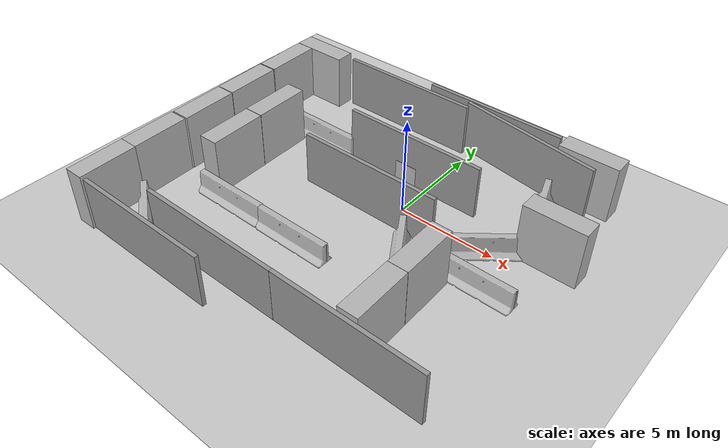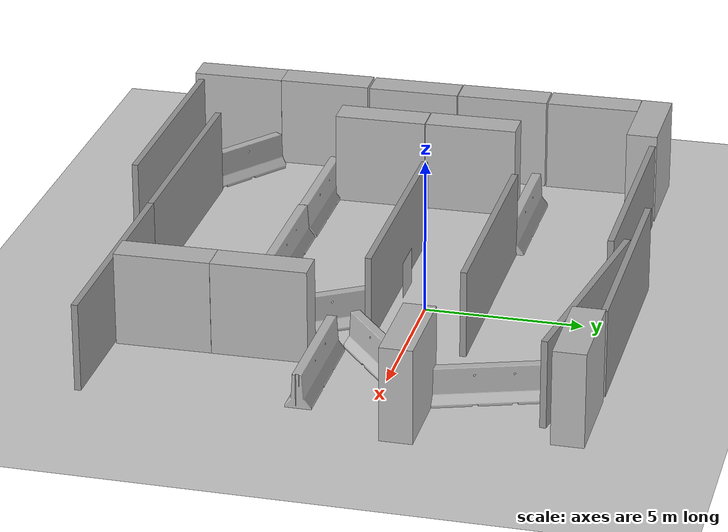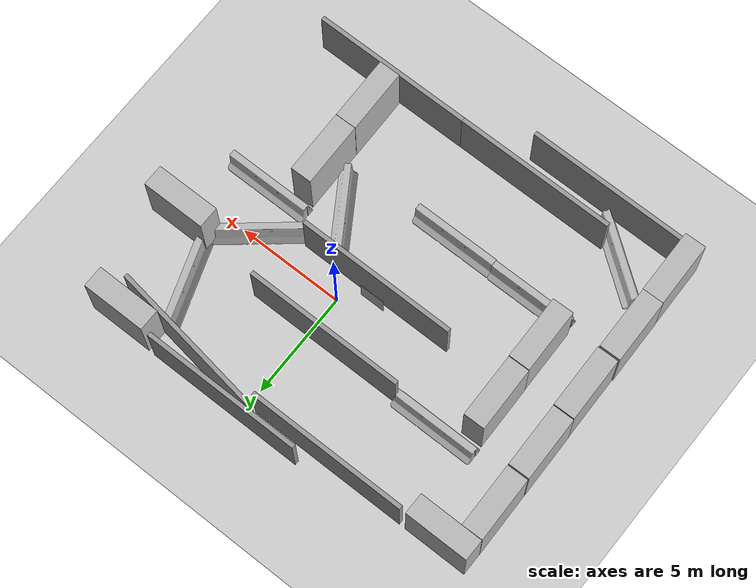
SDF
<sdf version="1.7">
 <world name="default">
  <light name="sun" type="directional">
   <pose>0 0 10 0 -0 0</pose>
   <diffuse>0.8 0.8 0.8 1</diffuse>
   <specular>0.2 0.2 0.2 1</specular>
   <attenuation>
    <range>1000</range>
    <constant>0.9</constant>
    <linear>0.01</linear>
    <quadratic>0.001</quadratic>
   </attenuation>
   <direction>-0.5 0.1 -0.9</direction>
   <spot><inner_angle>0</inner_angle><outer_angle>0</outer_angle><falloff>0</falloff></spot>
  </light>
  <model name="ground_plane">
   <static>1</static>
   <link name="link">
    <collision name="collision">
     <geometry><plane><normal>0 0 1</normal><size>100 100</size></plane></geometry>
     <surface>
      <contact><collide_bitmask>65535</collide_bitmask></contact>
      <friction><ode><mu>100</mu><mu2>50</mu2></ode></friction>
     </surface>
    </collision>
    <visual name="visual">
     <cast_shadows>0</cast_shadows>
     <geometry><plane><normal>0 0 1</normal><size>100 100</size></plane></geometry>
     <material>
      <script><uri>file://media/materials/scripts/gazebo.material</uri><name>Gazebo/Grey</name></script>
     </material>
    </visual>
   </link>
  </model>
  <gravity>0 0 -9.8</gravity>
  <magnetic_field>6e-06 2.3e-05 -4.2e-05</magnetic_field>
  <atmosphere type="adiabatic"/>
  <physics type="ode">
   <max_step_size>0.001</max_step_size>
   <real_time_factor>1</real_time_factor>
   <real_time_update_rate>1000</real_time_update_rate>
  </physics>
  <scene><ambient>0.4 0.4 0.4 1</ambient><background>0.7 0.7 0.7 1</background><shadows>1</shadows></scene>
  <spherical_coordinates>
   <surface_model>EARTH_WGS84</surface_model>
   <latitude_deg>0</latitude_deg>
   <longitude_deg>0</longitude_deg>
   <elevation>0</elevation>
   <heading_deg>0</heading_deg>
  </spherical_coordinates>
  <model name="grey_wall">
   <static>1</static>
   <link name="link">
    <pose>0 0 1.4 0 -0 0</pose>
    <collision name="collision"><geometry><box><size>7.5 0.2 2.8</size></box></geometry></collision>
    <visual name="visual">
     <cast_shadows>0</cast_shadows>
     <geometry><box><size>7.5 0.2 2.8</size></box></geometry>
     <material>
      <script>
       <uri>model://grey_wall/materials/scripts</uri>
       <uri>model://grey_wall/materials/textures</uri>
       <name>vrc/grey_wall</name>
      </script>
     </material>
    </visual>
   </link>
   <pose>-3.5333 -8.75879 0 0 -0 0</pose>
  </model>
  <model name="nist_maze_wall_120">
   <static>1</static>
   <link name="nist_maze_wall_120_link">
    <collision name="collision">
     <geometry>
      <mesh><uri>model://nist_maze_wall_120/meshes/nist_maze_wall_120.dae</uri><scale>1 1 1</scale></mesh>
     </geometry>
    </collision>
    <visual name="visual">
     <geometry>
      <mesh><uri>model://nist_maze_wall_120/meshes/nist_maze_wall_120.dae</uri><scale>1 1 1</scale></mesh>
     </geometry>
    </visual>
   </link>
   <pose>-1.21267 -1.45873 0 0 -0 0</pose>
  </model>
  <model name="brick_box_3x1x3">
   <static>1</static>
   <link name="chassis">
    <pose>0 0 1.5 0 -0 0</pose>
    <collision name="collision"><geometry><box><size>3 1 3</size></box></geometry></collision>
    <visual name="visual">
     <geometry><mesh><uri>model://brick_box_3x1x3/meshes/simple_box.dae</uri><scale>3 1 3</scale></mesh></geometry>
     <material>
      <script>
       <uri>model://brick_box_3x1x3/materials/scripts</uri>
       <uri>model://brick_box_3x1x3/materials/textures</uri>
       <name>BrickBox/Diffuse</name>
      </script>
     </material>
    </visual>
   </link>
   <pose>7.16212 1.16098 0 0 -0 0</pose>
  </model>
  <model name="jersey_barrier">
   <static>1</static>
   <link name="link">
    <visual name="visual">
     <geometry><mesh><uri>model://jersey_barrier/meshes/jersey_barrier.dae</uri></mesh></geometry>
    </visual>
    <collision name="upright">
     <pose>0 0 0.5715 0 -0 0</pose>
     <geometry><box><size>4.06542 0.3063 1.143</size></box></geometry>
    </collision>
    <collision name="base">
     <pose>0 0 0.032258 0 -0 0</pose>
     <geometry><box><size>4.06542 0.8107 0.064516</size></box></geometry>
    </collision>
    <collision name="base2">
     <pose>0 0 0.1 0 -0 0</pose>
     <geometry><box><size>4.06542 0.65 0.1</size></box></geometry>
    </collision>
    <collision name="base3">
     <pose>0 0 0.2 0 -0 0</pose>
     <geometry><box><size>4.06542 0.5 0.1</size></box></geometry>
    </collision>
    <collision name="left-angle">
     <pose>0 -0.224 0.2401 0.9 -0 0</pose>
     <geometry><box><size>4.06542 0.5 0.064516</size></box></geometry>
    </collision>
    <collision name="right-angle">
     <pose>0 0.224 0.2401 -0.9 0 0</pose>
     <geometry><box><size>4.06542 0.5 0.064516</size></box></geometry>
    </collision>
   </link>
   <pose>5.31518 -2.1196 0 0 -0 0</pose>
  </model>
  <model name="grey_wall_clone">
   <static>1</static>
   <link name="link">
    <pose>0 0 1.4 0 -0 0</pose>
    <collision name="collision"><geometry><box><size>7.5 0.2 2.8</size></box></geometry></collision>
    <visual name="visual">
     <cast_shadows>0</cast_shadows>
     <geometry><box><size>7.5 0.2 2.8</size></box></geometry>
     <material>
      <script>
       <uri>model://grey_wall/materials/scripts</uri>
       <uri>model://grey_wall/materials/textures</uri>
       <name>vrc/grey_wall</name>
      </script>
     </material>
    </visual>
   </link>
   <pose>-0.900684 1.84089 0 0 -0 0</pose>
  </model>
  <model name="grey_wall_clone_0">
   <static>1</static>
   <link name="link">
    <pose>0 0 1.4 0 -0 0</pose>
    <collision name="collision"><geometry><box><size>7.5 0.2 2.8</size></box></geometry></collision>
    <visual name="visual">
     <cast_shadows>0</cast_shadows>
     <geometry><box><size>7.5 0.2 2.8</size></box></geometry>
     <material>
      <script>
       <uri>model://grey_wall/materials/scripts</uri>
       <uri>model://grey_wall/materials/textures</uri>
       <name>vrc/grey_wall</name>
      </script>
     </material>
    </visual>
   </link>
   <pose>-6.24437 -10.1356 0 0 -0 0</pose>
  </model>
  <model name="grey_wall_clone_1">
   <static>1</static>
   <link name="link">
    <pose>0 0 1.4 0 -0 0</pose>
    <collision name="collision"><geometry><box><size>7.5 0.2 2.8</size></box></geometry></collision>
    <visual name="visual">
     <cast_shadows>0</cast_shadows>
     <geometry><box><size>7.5 0.2 2.8</size></box></geometry>
     <material>
      <script>
       <uri>model://grey_wall/materials/scripts</uri>
       <uri>model://grey_wall/materials/textures</uri>
       <name>vrc/grey_wall</name>
      </script>
     </material>
    </visual>
   </link>
   <pose>3.95385 -8.7555 0 0 -0 0</pose>
  </model>
  <model name="grey_wall_clone_0_clone_1">
   <static>1</static>
   <link name="link">
    <pose>0 0 1.4 0 -0 0</pose>
    <collision name="collision"><geometry><box><size>7.5 0.2 2.8</size></box></geometry></collision>
    <visual name="visual">
     <cast_shadows>0</cast_shadows>
     <geometry><box><size>7.5 0.2 2.8</size></box></geometry>
     <material>
      <script>
       <uri>model://grey_wall/materials/scripts</uri>
       <uri>model://grey_wall/materials/textures</uri>
       <name>vrc/grey_wall</name>
      </script>
     </material>
    </visual>
   </link>
   <pose>0.672905 6.40226 0 0 -0 0</pose>
  </model>
  <model name="grey_wall_clone_clone">
   <static>1</static>
   <link name="link">
    <pose>0 0 1.4 0 -0 0</pose>
    <collision name="collision"><geometry><box><size>7.5 0.2 2.8</size></box></geometry></collision>
    <visual name="visual">
     <cast_shadows>0</cast_shadows>
     <geometry><box><size>7.5 0.2 2.8</size></box></geometry>
     <material>
      <script>
       <uri>model://grey_wall/materials/scripts</uri>
       <uri>model://grey_wall/materials/textures</uri>
       <name>vrc/grey_wall</name>
      </script>
     </material>
    </visual>
   </link>
   <pose>-1.1998 -1.17835 0 0 -0 0</pose>
  </model>
  <model name="nist_maze_wall_120_clone">
   <static>1</static>
   <link name="nist_maze_wall_120_link">
    <collision name="collision">
     <geometry>
      <mesh><uri>model://nist_maze_wall_120/meshes/nist_maze_wall_120.dae</uri><scale>1 1 1</scale></mesh>
     </geometry>
    </collision>
    <visual name="visual">
     <geometry>
      <mesh><uri>model://nist_maze_wall_120/meshes/nist_maze_wall_120.dae</uri><scale>1 1 1</scale></mesh>
     </geometry>
    </visual>
   </link>
   <pose>-1.11315 1.03044 0 0 -0 0</pose>
  </model>
  <model name="brick_box_3x1x3_clone_clone">
   <static>1</static>
   <link name="chassis">
    <pose>0 0 1.5 0 -0 0</pose>
    <collision name="collision"><geometry><box><size>3 1 3</size></box></geometry></collision>
    <visual name="visual">
     <geometry><mesh><uri>model://brick_box_3x1x3/meshes/simple_box.dae</uri><scale>3 1 3</scale></mesh></geometry>
     <material>
      <script>
       <uri>model://brick_box_3x1x3/materials/scripts</uri>
       <uri>model://brick_box_3x1x3/materials/textures</uri>
       <name>BrickBox/Diffuse</name>
      </script>
     </material>
    </visual>
   </link>
   <pose>6.22244 5.99709 0 0 -0 0</pose>
  </model>
  <model name="grey_wall_clone_0_clone_0_clone">
   <static>1</static>
   <link name="link">
    <pose>0 0 1.4 0 -0 0</pose>
    <collision name="collision"><geometry><box><size>7.5 0.2 2.8</size></box></geometry></collision>
    <visual name="visual">
     <cast_shadows>0</cast_shadows>
     <geometry><box><size>7.5 0.2 2.8</size></box></geometry>
     <material>
      <script>
       <uri>model://grey_wall/materials/scripts</uri>
       <uri>model://grey_wall/materials/textures</uri>
       <name>vrc/grey_wall</name>
      </script>
     </material>
    </visual>
   </link>
   <pose>3.0644 5.63462 0 0 0 -0.145885</pose>
  </model>
  <model name="grey_wall_clone_0_clone_0_clone_0">
   <static>1</static>
   <link name="link">
    <pose>0 0 1.4 0 -0 0</pose>
    <collision name="collision"><geometry><box><size>7.5 0.2 2.8</size></box></geometry></collision>
    <visual name="visual">
     <cast_shadows>0</cast_shadows>
     <geometry><box><size>7.5 0.2 2.8</size></box></geometry>
     <material>
      <script>
       <uri>model://grey_wall/materials/scripts</uri>
       <uri>model://grey_wall/materials/textures</uri>
       <name>vrc/grey_wall</name>
      </script>
     </material>
    </visual>
   </link>
   <pose>-4.1641 5.70704 0 0 -0 0</pose>
  </model>
  <model name="jersey_barrier_clone">
   <static>1</static>
   <link name="link">
    <visual name="visual">
     <geometry><mesh><uri>model://jersey_barrier/meshes/jersey_barrier.dae</uri></mesh></geometry>
    </visual>
    <collision name="upright">
     <pose>0 0 0.5715 0 -0 0</pose>
     <geometry><box><size>4.06542 0.3063 1.143</size></box></geometry>
    </collision>
    <collision name="base">
     <pose>0 0 0.032258 0 -0 0</pose>
     <geometry><box><size>4.06542 0.8107 0.064516</size></box></geometry>
    </collision>
    <collision name="base2">
     <pose>0 0 0.1 0 -0 0</pose>
     <geometry><box><size>4.06542 0.65 0.1</size></box></geometry>
    </collision>
    <collision name="base3">
     <pose>0 0 0.2 0 -0 0</pose>
     <geometry><box><size>4.06542 0.5 0.1</size></box></geometry>
    </collision>
    <collision name="left-angle">
     <pose>0 -0.224 0.2401 0.9 -0 0</pose>
     <geometry><box><size>4.06542 0.5 0.064516</size></box></geometry>
    </collision>
    <collision name="right-angle">
     <pose>0 0.224 0.2401 -0.9 0 0</pose>
     <geometry><box><size>4.06542 0.5 0.064516</size></box></geometry>
    </collision>
   </link>
   <pose>5.34841 3.33148 0 0 -0 1.9011</pose>
  </model>
  <model name="jersey_barrier_clone_clone">
   <static>1</static>
   <link name="link">
    <visual name="visual">
     <geometry><mesh><uri>model://jersey_barrier/meshes/jersey_barrier.dae</uri></mesh></geometry>
    </visual>
    <collision name="upright">
     <pose>0 0 0.5715 0 -0 0</pose>
     <geometry><box><size>4.06542 0.3063 1.143</size></box></geometry>
    </collision>
    <collision name="base">
     <pose>0 0 0.032258 0 -0 0</pose>
     <geometry><box><size>4.06542 0.8107 0.064516</size></box></geometry>
    </collision>
    <collision name="base2">
     <pose>0 0 0.1 0 -0 0</pose>
     <geometry><box><size>4.06542 0.65 0.1</size></box></geometry>
    </collision>
    <collision name="base3">
     <pose>0 0 0.2 0 -0 0</pose>
     <geometry><box><size>4.06542 0.5 0.1</size></box></geometry>
    </collision>
    <collision name="left-angle">
     <pose>0 -0.224 0.2401 0.9 -0 0</pose>
     <geometry><box><size>4.06542 0.5 0.064516</size></box></geometry>
    </collision>
    <collision name="right-angle">
     <pose>0 0.224 0.2401 -0.9 0 0</pose>
     <geometry><box><size>4.06542 0.5 0.064516</size></box></geometry>
    </collision>
   </link>
   <pose>4.37945 -0.242069 0 0 -0 0.685558</pose>
  </model>
  <model name="brick_box_3x1x3_clone_clone_clone">
   <static>1</static>
   <link name="chassis">
    <pose>0 0 1.5 0 -0 0</pose>
    <collision name="collision"><geometry><box><size>3 1 3</size></box></geometry></collision>
    <visual name="visual">
     <geometry><mesh><uri>model://brick_box_3x1x3/meshes/simple_box.dae</uri><scale>3 1 3</scale></mesh></geometry>
     <material>
      <script>
       <uri>model://brick_box_3x1x3/materials/scripts</uri>
       <uri>model://brick_box_3x1x3/materials/textures</uri>
       <name>BrickBox/Diffuse</name>
      </script>
     </material>
    </visual>
   </link>
   <pose>-9.70571 5.30807 0 0 -0 0</pose>
  </model>
  <model name="brick_box_3x1x3_clone_clone_clone_0">
   <static>1</static>
   <link name="chassis">
    <pose>0 0 1.5 0 -0 0</pose>
    <collision name="collision"><geometry><box><size>3 1 3</size></box></geometry></collision>
    <visual name="visual">
     <geometry><mesh><uri>model://brick_box_3x1x3/meshes/simple_box.dae</uri><scale>3 1 3</scale></mesh></geometry>
     <material>
      <script>
       <uri>model://brick_box_3x1x3/materials/scripts</uri>
       <uri>model://brick_box_3x1x3/materials/textures</uri>
       <name>BrickBox/Diffuse</name>
      </script>
     </material>
    </visual>
   </link>
   <pose>-10.6849 3.29996 0 0 0 -1.55503</pose>
  </model>
  <model name="brick_box_3x1x3_clone_clone_clone_0_clone">
   <static>1</static>
   <link name="chassis">
    <pose>0 0 1.5 0 -0 0</pose>
    <collision name="collision"><geometry><box><size>3 1 3</size></box></geometry></collision>
    <visual name="visual">
     <geometry><mesh><uri>model://brick_box_3x1x3/meshes/simple_box.dae</uri><scale>3 1 3</scale></mesh></geometry>
     <material>
      <script>
       <uri>model://brick_box_3x1x3/materials/scripts</uri>
       <uri>model://brick_box_3x1x3/materials/textures</uri>
       <name>BrickBox/Diffuse</name>
      </script>
     </material>
    </visual>
   </link>
   <pose>-10.6399 0.247985 0 0 0 -1.55503</pose>
  </model>
  <model name="jersey_barrier_clone_0">
   <static>1</static>
   <link name="link">
    <visual name="visual">
     <geometry><mesh><uri>model://jersey_barrier/meshes/jersey_barrier.dae</uri></mesh></geometry>
    </visual>
    <collision name="upright">
     <pose>0 0 0.5715 0 -0 0</pose>
     <geometry><box><size>4.06542 0.3063 1.143</size></box></geometry>
    </collision>
    <collision name="base">
     <pose>0 0 0.032258 0 -0 0</pose>
     <geometry><box><size>4.06542 0.8107 0.064516</size></box></geometry>
    </collision>
    <collision name="base2">
     <pose>0 0 0.1 0 -0 0</pose>
     <geometry><box><size>4.06542 0.65 0.1</size></box></geometry>
    </collision>
    <collision name="base3">
     <pose>0 0 0.2 0 -0 0</pose>
     <geometry><box><size>4.06542 0.5 0.1</size></box></geometry>
    </collision>
    <collision name="left-angle">
     <pose>0 -0.224 0.2401 0.9 -0 0</pose>
     <geometry><box><size>4.06542 0.5 0.064516</size></box></geometry>
    </collision>
    <collision name="right-angle">
     <pose>0 0.224 0.2401 -0.9 0 0</pose>
     <geometry><box><size>4.06542 0.5 0.064516</size></box></geometry>
    </collision>
   </link>
   <pose>-6.57936 1.77096 0 0 -0 0</pose>
  </model>
  <model name="brick_box_3x1x3_clone_clone_clone_0_clone_clone">
   <static>1</static>
   <link name="chassis">
    <pose>0 0 1.5 0 -0 0</pose>
    <collision name="collision"><geometry><box><size>3 1 3</size></box></geometry></collision>
    <visual name="visual">
     <geometry><mesh><uri>model://brick_box_3x1x3/meshes/simple_box.dae</uri><scale>3 1 3</scale></mesh></geometry>
     <material>
      <script>
       <uri>model://brick_box_3x1x3/materials/scripts</uri>
       <uri>model://brick_box_3x1x3/materials/textures</uri>
       <name>BrickBox/Diffuse</name>
      </script>
     </material>
    </visual>
   </link>
   <pose>-8.02814 -0.260572 0 0 0 -1.55503</pose>
  </model>
  <model name="brick_box_3x1x3_clone_clone_clone_0_clone_clone_0">
   <static>1</static>
   <link name="chassis">
    <pose>0 0 1.5 0 -0 0</pose>
    <collision name="collision"><geometry><box><size>3 1 3</size></box></geometry></collision>
    <visual name="visual">
     <geometry><mesh><uri>model://brick_box_3x1x3/meshes/simple_box.dae</uri><scale>3 1 3</scale></mesh></geometry>
     <material>
      <script>
       <uri>model://brick_box_3x1x3/materials/scripts</uri>
       <uri>model://brick_box_3x1x3/materials/textures</uri>
       <name>BrickBox/Diffuse</name>
      </script>
     </material>
    </visual>
   </link>
   <pose>-7.96741 -3.28345 0 0 0 -1.55503</pose>
  </model>
  <model name="brick_box_3x1x3_clone_clone_clone_0_clone_clone_1">
   <static>1</static>
   <link name="chassis">
    <pose>0 0 1.5 0 -0 0</pose>
    <collision name="collision"><geometry><box><size>3 1 3</size></box></geometry></collision>
    <visual name="visual">
     <geometry><mesh><uri>model://brick_box_3x1x3/meshes/simple_box.dae</uri><scale>3 1 3</scale></mesh></geometry>
     <material>
      <script>
       <uri>model://brick_box_3x1x3/materials/scripts</uri>
       <uri>model://brick_box_3x1x3/materials/textures</uri>
       <name>BrickBox/Diffuse</name>
      </script>
     </material>
    </visual>
   </link>
   <pose>-10.5788 -2.78279 0 0 0 -1.55503</pose>
  </model>
  <model name="brick_box_3x1x3_clone_clone_clone_0_clone_clone_2">
   <static>1</static>
   <link name="chassis">
    <pose>0 0 1.5 0 -0 0</pose>
    <collision name="collision"><geometry><box><size>3 1 3</size></box></geometry></collision>
    <visual name="visual">
     <geometry><mesh><uri>model://brick_box_3x1x3/meshes/simple_box.dae</uri><scale>3 1 3</scale></mesh></geometry>
     <material>
      <script>
       <uri>model://brick_box_3x1x3/materials/scripts</uri>
       <uri>model://brick_box_3x1x3/materials/textures</uri>
       <name>BrickBox/Diffuse</name>
      </script>
     </material>
    </visual>
   </link>
   <pose>-10.5629 -5.85724 0 0 0 -1.55503</pose>
  </model>
  <model name="brick_box_3x1x3_clone_clone_clone_0_clone_clone_3">
   <static>1</static>
   <link name="chassis">
    <pose>0 0 1.5 0 -0 0</pose>
    <collision name="collision"><geometry><box><size>3 1 3</size></box></geometry></collision>
    <visual name="visual">
     <geometry><mesh><uri>model://brick_box_3x1x3/meshes/simple_box.dae</uri><scale>3 1 3</scale></mesh></geometry>
     <material>
      <script>
       <uri>model://brick_box_3x1x3/materials/scripts</uri>
       <uri>model://brick_box_3x1x3/materials/textures</uri>
       <name>BrickBox/Diffuse</name>
      </script>
     </material>
    </visual>
   </link>
   <pose>-10.5042 -8.85493 0 0 0 -1.55503</pose>
  </model>
  <model name="jersey_barrier_clone_0_clone">
   <static>1</static>
   <link name="link">
    <visual name="visual">
     <geometry><mesh><uri>model://jersey_barrier/meshes/jersey_barrier.dae</uri></mesh></geometry>
    </visual>
    <collision name="upright">
     <pose>0 0 0.5715 0 -0 0</pose>
     <geometry><box><size>4.06542 0.3063 1.143</size></box></geometry>
    </collision>
    <collision name="base">
     <pose>0 0 0.032258 0 -0 0</pose>
     <geometry><box><size>4.06542 0.8107 0.064516</size></box></geometry>
    </collision>
    <collision name="base2">
     <pose>0 0 0.1 0 -0 0</pose>
     <geometry><box><size>4.06542 0.65 0.1</size></box></geometry>
    </collision>
    <collision name="base3">
     <pose>0 0 0.2 0 -0 0</pose>
     <geometry><box><size>4.06542 0.5 0.1</size></box></geometry>
    </collision>
    <collision name="left-angle">
     <pose>0 -0.224 0.2401 0.9 -0 0</pose>
     <geometry><box><size>4.06542 0.5 0.064516</size></box></geometry>
    </collision>
    <collision name="right-angle">
     <pose>0 0.224 0.2401 -0.9 0 0</pose>
     <geometry><box><size>4.06542 0.5 0.064516</size></box></geometry>
    </collision>
   </link>
   <pose>-8.22509 -8.60135 0 0 0 -0.636456</pose>
  </model>
  <model name="jersey_barrier_clone_0_clone_0">
   <static>1</static>
   <link name="link">
    <visual name="visual">
     <geometry><mesh><uri>model://jersey_barrier/meshes/jersey_barrier.dae</uri></mesh></geometry>
    </visual>
    <collision name="upright">
     <pose>0 0 0.5715 0 -0 0</pose>
     <geometry><box><size>4.06542 0.3063 1.143</size></box></geometry>
    </collision>
    <collision name="base">
     <pose>0 0 0.032258 0 -0 0</pose>
     <geometry><box><size>4.06542 0.8107 0.064516</size></box></geometry>
    </collision>
    <collision name="base2">
     <pose>0 0 0.1 0 -0 0</pose>
     <geometry><box><size>4.06542 0.65 0.1</size></box></geometry>
    </collision>
    <collision name="base3">
     <pose>0 0 0.2 0 -0 0</pose>
     <geometry><box><size>4.06542 0.5 0.1</size></box></geometry>
    </collision>
    <collision name="left-angle">
     <pose>0 -0.224 0.2401 0.9 -0 0</pose>
     <geometry><box><size>4.06542 0.5 0.064516</size></box></geometry>
    </collision>
    <collision name="right-angle">
     <pose>0 0.224 0.2401 -0.9 0 0</pose>
     <geometry><box><size>4.06542 0.5 0.064516</size></box></geometry>
    </collision>
   </link>
   <pose>-6.34536 -5.04778 0 0 -0 0</pose>
  </model>
  <model name="jersey_barrier_clone_0_clone_1">
   <static>1</static>
   <link name="link">
    <visual name="visual">
     <geometry><mesh><uri>model://jersey_barrier/meshes/jersey_barrier.dae</uri></mesh></geometry>
    </visual>
    <collision name="upright">
     <pose>0 0 0.5715 0 -0 0</pose>
     <geometry><box><size>4.06542 0.3063 1.143</size></box></geometry>
    </collision>
    <collision name="base">
     <pose>0 0 0.032258 0 -0 0</pose>
     <geometry><box><size>4.06542 0.8107 0.064516</size></box></geometry>
    </collision>
    <collision name="base2">
     <pose>0 0 0.1 0 -0 0</pose>
     <geometry><box><size>4.06542 0.65 0.1</size></box></geometry>
    </collision>
    <collision name="base3">
     <pose>0 0 0.2 0 -0 0</pose>
     <geometry><box><size>4.06542 0.5 0.1</size></box></geometry>
    </collision>
    <collision name="left-angle">
     <pose>0 -0.224 0.2401 0.9 -0 0</pose>
     <geometry><box><size>4.06542 0.5 0.064516</size></box></geometry>
    </collision>
    <collision name="right-angle">
     <pose>0 0.224 0.2401 -0.9 0 0</pose>
     <geometry><box><size>4.06542 0.5 0.064516</size></box></geometry>
    </collision>
   </link>
   <pose>-2.31996 -5.07993 0 0 -0 0</pose>
  </model>
  <model name="brick_box_3x1x3_clone_clone_clone_0_clone_clone_0_clone">
   <static>1</static>
   <link name="chassis">
    <pose>0 0 1.5 0 -0 0</pose>
    <collision name="collision"><geometry><box><size>3 1 3</size></box></geometry></collision>
    <visual name="visual">
     <geometry><mesh><uri>model://brick_box_3x1x3/meshes/simple_box.dae</uri><scale>3 1 3</scale></mesh></geometry>
     <material>
      <script>
       <uri>model://brick_box_3x1x3/materials/scripts</uri>
       <uri>model://brick_box_3x1x3/materials/textures</uri>
       <name>BrickBox/Diffuse</name>
      </script>
     </material>
    </visual>
   </link>
   <pose>3.95402 -7.11223 0 0 0 -1.55503</pose>
  </model>
  <model name="brick_box_3x1x3_clone_clone_clone_0_clone_clone_0_clone_0">
   <static>1</static>
   <link name="chassis">
    <pose>0 0 1.5 0 -0 0</pose>
    <collision name="collision"><geometry><box><size>3 1 3</size></box></geometry></collision>
    <visual name="visual">
     <geometry><mesh><uri>model://brick_box_3x1x3/meshes/simple_box.dae</uri><scale>3 1 3</scale></mesh></geometry>
     <material>
      <script>
       <uri>model://brick_box_3x1x3/materials/scripts</uri>
       <uri>model://brick_box_3x1x3/materials/textures</uri>
       <name>BrickBox/Diffuse</name>
      </script>
     </material>
    </visual>
   </link>
   <pose>3.91304 -4.10688 0 0 0 -1.55503</pose>
  </model>
  <model name="jersey_barrier_clone_clone_0">
   <static>1</static>
   <link name="link">
    <visual name="visual">
     <geometry><mesh><uri>model://jersey_barrier/meshes/jersey_barrier.dae</uri></mesh></geometry>
    </visual>
    <collision name="upright">
     <pose>0 0 0.5715 0 -0 0</pose>
     <geometry><box><size>4.06542 0.3063 1.143</size></box></geometry>
    </collision>
    <collision name="base">
     <pose>0 0 0.032258 0 -0 0</pose>
     <geometry><box><size>4.06542 0.8107 0.064516</size></box></geometry>
    </collision>
    <collision name="base2">
     <pose>0 0 0.1 0 -0 0</pose>
     <geometry><box><size>4.06542 0.65 0.1</size></box></geometry>
    </collision>
    <collision name="base3">
     <pose>0 0 0.2 0 -0 0</pose>
     <geometry><box><size>4.06542 0.5 0.1</size></box></geometry>
    </collision>
    <collision name="left-angle">
     <pose>0 -0.224 0.2401 0.9 -0 0</pose>
     <geometry><box><size>4.06542 0.5 0.064516</size></box></geometry>
    </collision>
    <collision name="right-angle">
     <pose>0 0.224 0.2401 -0.9 0 0</pose>
     <geometry><box><size>4.06542 0.5 0.064516</size></box></geometry>
    </collision>
   </link>
   <pose>2.1024 -3.05349 0 0 -0 2.13363</pose>
  </model>
 </world>
</sdf>
